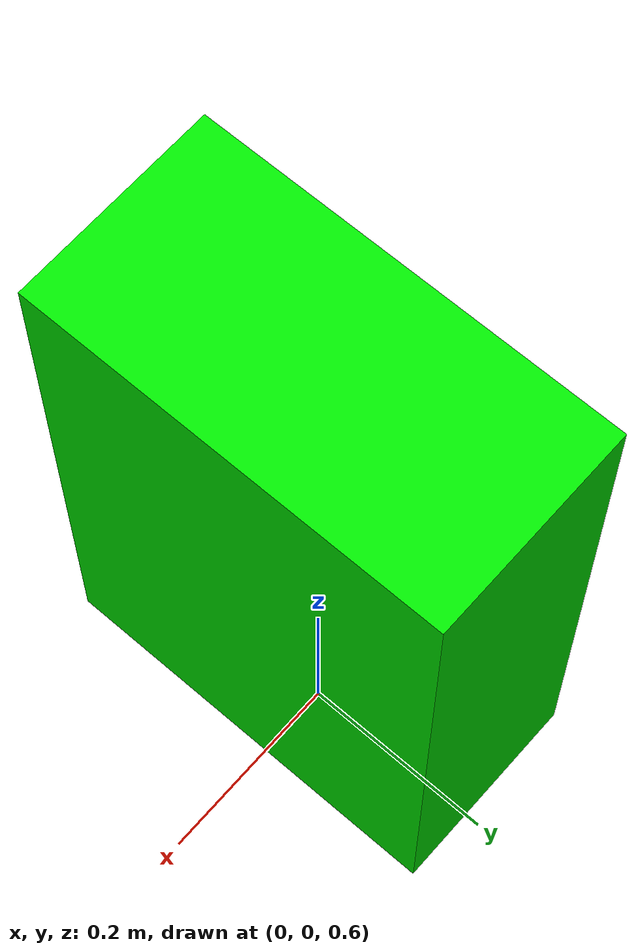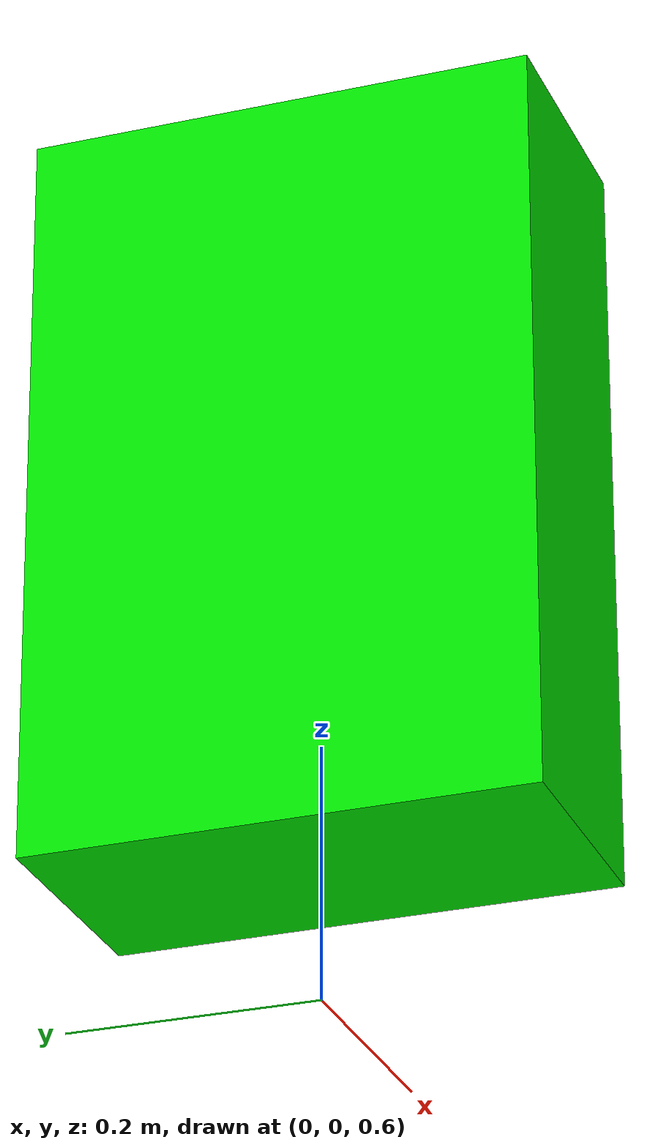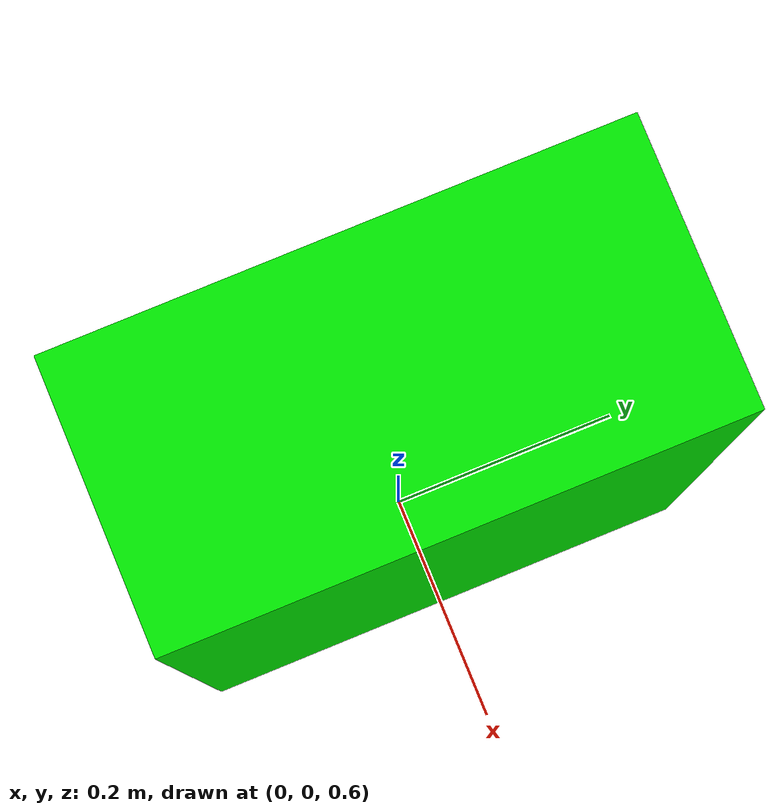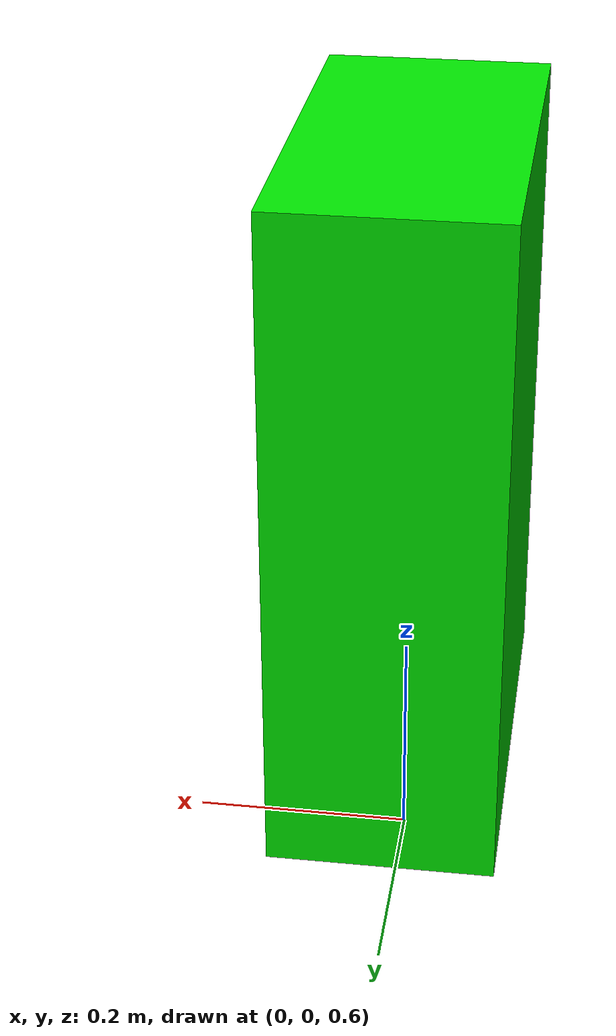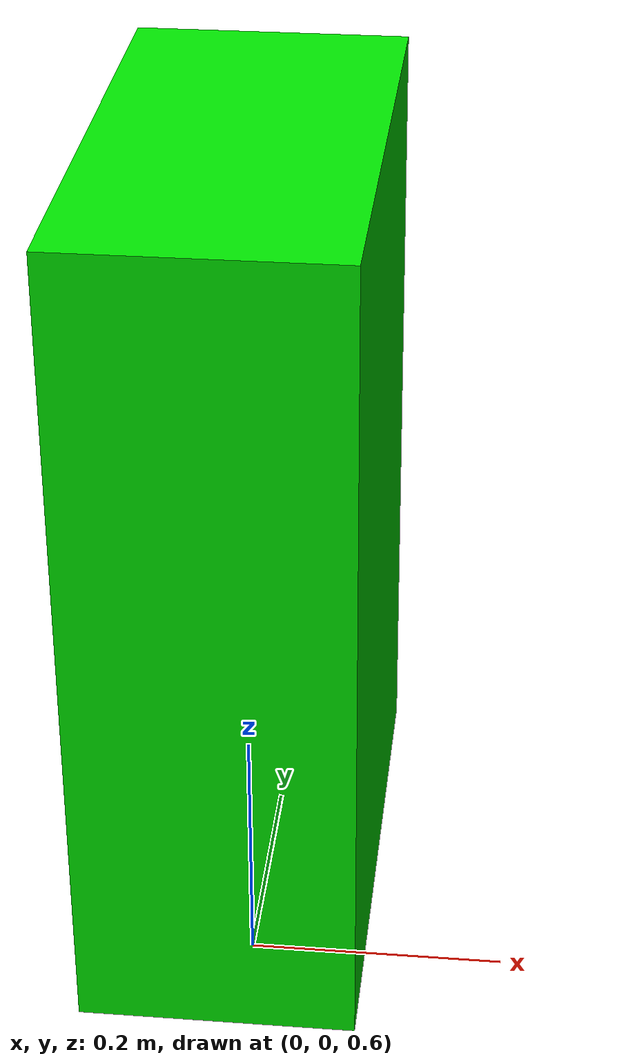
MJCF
<mujoco>
  <option timestep="0.01"> </option>
  <worldbody>
    <light diffuse=".5 .5 .5" pos="0 0 3" dir="0 0 -1"/>
    <body name="root" pos="0 0 1">
      <joint type="free"/>
      <geom type="box" size=".1 .2 .3" rgba="0 .9 0 1"/>
    </body>
  </worldbody>
  <sensor>
    <framepos name="position" objtype="body" objname="root"/>
    <framequat name="quat" objtype="body" objname="root"/>
    <framelinvel name="linvel" objtype="body" objname="root"/>
    <frameangvel name="angvel" objtype="body" objname="root"/>
    <framelinacc name="linacc" objtype="body" objname="root"/>
    <frameangacc name="angacc" objtype="body" objname="root"/>
  </sensor>
</mujoco>
